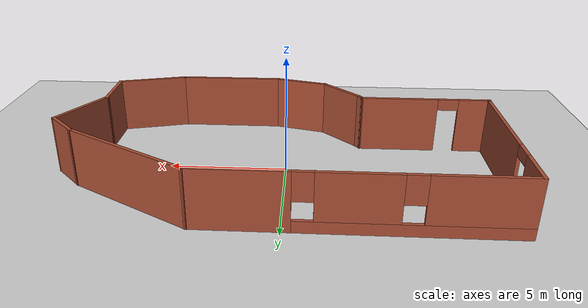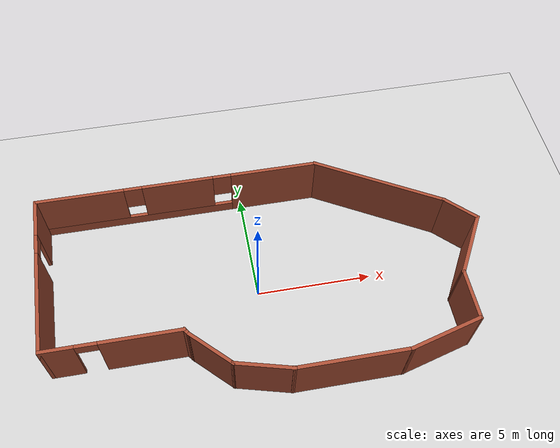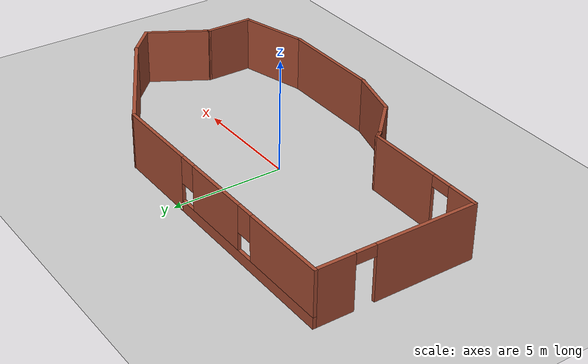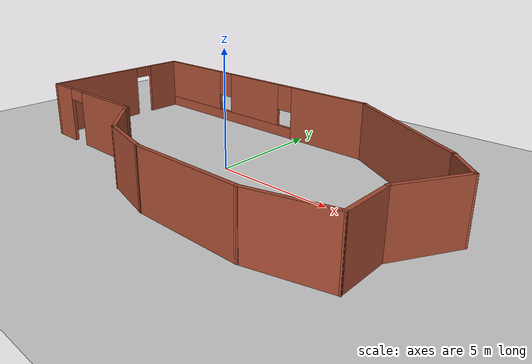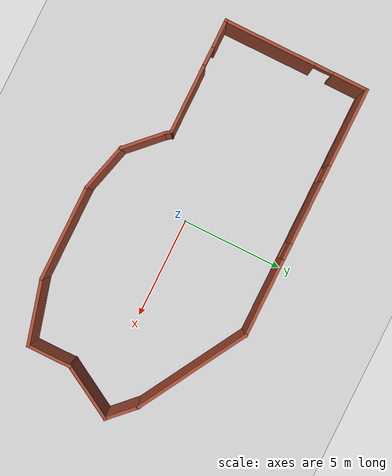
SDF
<sdf version="1.7">
 <world name="default">
  <light name="sun" type="directional">
   <pose>0 0 10 0 -0 0</pose>
   <diffuse>0.8 0.8 0.8 1</diffuse>
   <specular>0.2 0.2 0.2 1</specular>
   <attenuation>
    <range>1000</range>
    <constant>0.9</constant>
    <linear>0.01</linear>
    <quadratic>0.001</quadratic>
   </attenuation>
   <direction>-0.5 0.1 -0.9</direction>
   <spot><inner_angle>0</inner_angle><outer_angle>0</outer_angle><falloff>0</falloff></spot>
  </light>
  <model name="ground_plane">
   <static>1</static>
   <link name="link">
    <collision name="collision">
     <geometry><plane><normal>0 0 1</normal><size>100 100</size></plane></geometry>
     <surface><friction><ode><mu>100</mu><mu2>50</mu2></ode></friction></surface>
    </collision>
    <visual name="visual">
     <cast_shadows>0</cast_shadows>
     <geometry><plane><normal>0 0 1</normal><size>100 100</size></plane></geometry>
     <material>
      <script><uri>file://media/materials/scripts/gazebo.material</uri><name>Gazebo/Grey</name></script>
     </material>
    </visual>
   </link>
  </model>
  <gravity>0 0 -9.8</gravity>
  <magnetic_field>6e-06 2.3e-05 -4.2e-05</magnetic_field>
  <atmosphere type="adiabatic"/>
  <physics type="ode">
   <max_step_size>0.001</max_step_size>
   <real_time_factor>1</real_time_factor>
   <real_time_update_rate>1000</real_time_update_rate>
  </physics>
  <scene><ambient>0.4 0.4 0.4 1</ambient><background>0.7 0.7 0.7 1</background><shadows>1</shadows></scene>
  <audio><device>default</device></audio>
  <spherical_coordinates>
   <surface_model>EARTH_WGS84</surface_model>
   <latitude_deg>0</latitude_deg>
   <longitude_deg>0</longitude_deg>
   <elevation>0</elevation>
   <heading_deg>0</heading_deg>
  </spherical_coordinates>
  <model name="rover_sim_building">
   <pose>0.355943 0.04559 0 0 -0 0</pose>
   <link name="Wall_0">
    <collision name="Wall_0_Collision">
     <geometry><box><size>2.25 0.15 2.5</size></box></geometry>
     <pose>0 0 1.25 0 -0 0</pose>
    </collision>
    <visual name="Wall_0_Visual">
     <pose>0 0 1.25 0 -0 0</pose>
     <geometry><box><size>2.25 0.15 2.5</size></box></geometry>
     <material>
      <script><uri>file://media/materials/scripts/gazebo.material</uri><name>Gazebo/Bricks</name></script>
      <ambient>1 1 1 1</ambient>
     </material>
     <meta><layer>0</layer></meta>
    </visual>
    <pose>-2.77348 -3.36805 0 0 -0 -0.785398</pose>
   </link>
   <link name="Wall_1">
    <collision name="Wall_1_Collision">
     <geometry><box><size>2.5 0.15 2.5</size></box></geometry>
     <pose>0 0 1.25 0 -0 0</pose>
    </collision>
    <visual name="Wall_1_Visual">
     <pose>0 0 1.25 0 -0 0</pose>
     <geometry><box><size>2.5 0.15 2.5</size></box></geometry>
     <material>
      <script><uri>file://media/materials/scripts/gazebo.material</uri><name>Gazebo/Bricks</name></script>
      <ambient>1 1 1 1</ambient>
     </material>
     <meta><layer>0</layer></meta>
    </visual>
    <pose>-0.896056 -4.41463 0 0 -0 -0.261799</pose>
   </link>
   <link name="Wall_10">
    <pose>-6.48934 -2.39186 0 0 -0 0</pose>
    <visual name="Wall_10_Visual_0">
     <pose>-2.16689 0 1.25 0 -0 0</pose>
     <geometry><box><size>1.41623 0.15 2.5</size></box></geometry>
     <material>
      <script><uri>file://media/materials/scripts/gazebo.material</uri><name>Gazebo/Bricks</name></script>
      <ambient>1 1 1 1</ambient>
     </material>
     <meta><layer>0</layer></meta>
    </visual>
    <collision name="Wall_10_Collision_0">
     <geometry><box><size>1.41623 0.15 2.5</size></box></geometry>
     <pose>-2.16689 0 1.25 0 -0 0</pose>
    </collision>
    <visual name="Wall_10_Visual_1">
     <pose>1.15811 0 1.25 0 -0 0</pose>
     <geometry><box><size>3.43377 0.15 2.5</size></box></geometry>
     <material>
      <script><uri>file://media/materials/scripts/gazebo.material</uri><name>Gazebo/Bricks</name></script>
      <ambient>1 1 1 1</ambient>
     </material>
     <meta><layer>0</layer></meta>
    </visual>
    <collision name="Wall_10_Collision_1">
     <geometry><box><size>3.43377 0.15 2.5</size></box></geometry>
     <pose>1.15811 0 1.25 0 -0 0</pose>
    </collision>
    <visual name="Wall_10_Visual_2">
     <pose>-1.00877 0 2.25 0 -0 0</pose>
     <geometry><box><size>0.9 0.15 0.5</size></box></geometry>
     <material>
      <script><uri>file://media/materials/scripts/gazebo.material</uri><name>Gazebo/Bricks</name></script>
      <ambient>1 1 1 1</ambient>
     </material>
     <meta><layer>0</layer></meta>
    </visual>
    <collision name="Wall_10_Collision_2">
     <geometry><box><size>0.9 0.15 0.5</size></box></geometry>
     <pose>-1.00877 0 2.25 0 -0 0</pose>
    </collision>
   </link>
   <link name="Wall_11">
    <collision name="Wall_11_Collision">
     <geometry><box><size>0.44103 0.15 2.5</size></box></geometry>
     <pose>0 0 1.25 0 -0 0</pose>
    </collision>
    <visual name="Wall_11_Visual">
     <pose>0 0 1.25 0 -0 0</pose>
     <geometry><box><size>0.44103 0.15 2.5</size></box></geometry>
     <material>
      <script><uri>file://media/materials/scripts/gazebo.material</uri><name>Gazebo/Bricks</name></script>
      <ambient>1 1 1 1</ambient>
     </material>
     <meta><layer>0</layer></meta>
    </visual>
    <pose>-3.60264 -2.50872 0 0 -0 -0.932519</pose>
   </link>
   <link name="Wall_2">
    <collision name="Wall_2_Collision">
     <geometry><box><size>4.75 0.15 2.5</size></box></geometry>
     <pose>0 0 1.25 0 -0 0</pose>
    </collision>
    <visual name="Wall_2_Visual">
     <pose>0 0 1.25 0 -0 0</pose>
     <geometry><box><size>4.75 0.15 2.5</size></box></geometry>
     <material>
      <script><uri>file://media/materials/scripts/gazebo.material</uri><name>Gazebo/Bricks</name></script>
      <ambient>1 1 1 1</ambient>
     </material>
     <meta><layer>0</layer></meta>
    </visual>
    <pose>2.53891 -4.71874 0 0 -0 0</pose>
   </link>
   <link name="Wall_3">
    <collision name="Wall_3_Collision">
     <geometry><box><size>3.25 0.15 2.5</size></box></geometry>
     <pose>0 0 1.25 0 -0 0</pose>
    </collision>
    <visual name="Wall_3_Visual">
     <pose>0 0 1.25 0 -0 0</pose>
     <geometry><box><size>3.25 0.15 2.5</size></box></geometry>
     <material>
      <script><uri>file://media/materials/scripts/gazebo.material</uri><name>Gazebo/Bricks</name></script>
      <ambient>1 1 1 1</ambient>
     </material>
     <meta><layer>0</layer></meta>
    </visual>
    <pose>6.33609 -4.31757 0 0 -0 0.261799</pose>
   </link>
   <link name="Wall_4">
    <collision name="Wall_4_Collision">
     <geometry><box><size>2.25 0.15 2.5</size></box></geometry>
     <pose>0 0 1.25 0 -0 0</pose>
    </collision>
    <visual name="Wall_4_Visual">
     <pose>0 0 1.25 0 -0 0</pose>
     <geometry><box><size>2.25 0.15 2.5</size></box></geometry>
     <material>
      <script><uri>file://media/materials/scripts/gazebo.material</uri><name>Gazebo/Bricks</name></script>
      <ambient>1 1 1 1</ambient>
     </material>
     <meta><layer>0</layer></meta>
    </visual>
    <pose>7.83328 -2.8664 0 0 -0 1.5708</pose>
   </link>
   <link name="Wall_5">
    <collision name="Wall_5_Collision">
     <geometry><box><size>3 0.15 2.5</size></box></geometry>
     <pose>0 0 1.25 0 -0 0</pose>
    </collision>
    <visual name="Wall_5_Visual">
     <pose>0 0 1.25 0 -0 0</pose>
     <geometry><box><size>3 0.15 2.5</size></box></geometry>
     <material>
      <script><uri>file://media/materials/scripts/gazebo.material</uri><name>Gazebo/Bricks</name></script>
      <ambient>1 1 1 1</ambient>
     </material>
     <meta><layer>0</layer></meta>
    </visual>
    <pose>8.54578 -0.582314 0 0 -0 1.0472</pose>
   </link>
   <link name="Wall_6">
    <collision name="Wall_6_Collision">
     <geometry><box><size>1.75 0.15 2.5</size></box></geometry>
     <pose>0 0 1.25 0 -0 0</pose>
    </collision>
    <visual name="Wall_6_Visual">
     <pose>0 0 1.25 0 -0 0</pose>
     <geometry><box><size>1.75 0.15 2.5</size></box></geometry>
     <material>
      <script><uri>file://media/materials/scripts/gazebo.material</uri><name>Gazebo/Bricks</name></script>
      <ambient>1 1 1 1</ambient>
     </material>
     <meta><layer>0</layer></meta>
    </visual>
    <pose>8.69259 1.21746 0 0 -0 2.35619</pose>
   </link>
   <link name="Wall_7">
    <collision name="Wall_7_Collision">
     <geometry><box><size>6 0.15 2.5</size></box></geometry>
     <pose>0 0 1.25 0 -0 0</pose>
    </collision>
    <visual name="Wall_7_Visual">
     <pose>0 0 1.25 0 -0 0</pose>
     <geometry><box><size>6 0.15 2.5</size></box></geometry>
     <material>
      <script><uri>file://media/materials/scripts/gazebo.material</uri><name>Gazebo/Bricks</name></script>
      <ambient>1 1 1 1</ambient>
     </material>
     <meta><layer>0</layer></meta>
    </visual>
    <pose>5.59378 3.24564 0 0 -0 2.61799</pose>
   </link>
   <link name="Wall_8">
    <pose>-3.11434 4.70814 0 0 -0 3.14159</pose>
    <visual name="Wall_8_Visual_0">
     <pose>-4.30537 0 1.25 0 -0 0</pose>
     <geometry><box><size>3.88927 0.15 2.5</size></box></geometry>
     <material>
      <script><uri>file://media/materials/scripts/gazebo.material</uri><name>Gazebo/Bricks</name></script>
      <ambient>1 1 1 1</ambient>
     </material>
     <meta><layer>0</layer></meta>
    </visual>
    <collision name="Wall_8_Collision_0">
     <geometry><box><size>3.88927 0.15 2.5</size></box></geometry>
     <pose>-4.30537 0 1.25 0 -0 0</pose>
    </collision>
    <visual name="Wall_8_Visual_1">
     <pose>1.94463 0 0.25 0 -0 0</pose>
     <geometry><box><size>8.61073 0.15 0.5</size></box></geometry>
     <material>
      <script><uri>file://media/materials/scripts/gazebo.material</uri><name>Gazebo/Bricks</name></script>
      <ambient>1 1 1 1</ambient>
     </material>
     <meta><layer>0</layer></meta>
    </visual>
    <collision name="Wall_8_Collision_1">
     <geometry><box><size>8.61073 0.15 0.5</size></box></geometry>
     <pose>1.94463 0 0.25 0 -0 0</pose>
    </collision>
    <visual name="Wall_8_Visual_2">
     <pose>0.002361 0 1.5 0 -0 0</pose>
     <geometry><box><size>3.12619 0.15 2</size></box></geometry>
     <material>
      <script><uri>file://media/materials/scripts/gazebo.material</uri><name>Gazebo/Bricks</name></script>
      <ambient>1 1 1 1</ambient>
     </material>
     <meta><layer>0</layer></meta>
    </visual>
    <collision name="Wall_8_Collision_2">
     <geometry><box><size>3.12619 0.15 2</size></box></geometry>
     <pose>0.002361 0 1.5 0 -0 0</pose>
    </collision>
    <visual name="Wall_8_Visual_3">
     <pose>4.30773 0 1.5 0 -0 0</pose>
     <geometry><box><size>3.88454 0.15 2</size></box></geometry>
     <material>
      <script><uri>file://media/materials/scripts/gazebo.material</uri><name>Gazebo/Bricks</name></script>
      <ambient>1 1 1 1</ambient>
     </material>
     <meta><layer>0</layer></meta>
    </visual>
    <collision name="Wall_8_Collision_3">
     <geometry><box><size>3.88454 0.15 2</size></box></geometry>
     <pose>4.30773 0 1.5 0 -0 0</pose>
    </collision>
    <visual name="Wall_8_Visual_4">
     <pose>-1.96073 0 1.9 0 -0 0</pose>
     <geometry><box><size>0.8 0.15 1.2</size></box></geometry>
     <material>
      <script><uri>file://media/materials/scripts/gazebo.material</uri><name>Gazebo/Bricks</name></script>
      <ambient>1 1 1 1</ambient>
     </material>
     <meta><layer>0</layer></meta>
    </visual>
    <collision name="Wall_8_Collision_4">
     <geometry><box><size>0.8 0.15 1.2</size></box></geometry>
     <pose>-1.96073 0 1.9 0 -0 0</pose>
    </collision>
    <visual name="Wall_8_Visual_5">
     <pose>1.96546 0 1.9 0 -0 0</pose>
     <geometry><box><size>0.8 0.15 1.2</size></box></geometry>
     <material>
      <script><uri>file://media/materials/scripts/gazebo.material</uri><name>Gazebo/Bricks</name></script>
      <ambient>1 1 1 1</ambient>
     </material>
     <meta><layer>0</layer></meta>
    </visual>
    <collision name="Wall_8_Collision_5">
     <geometry><box><size>0.8 0.15 1.2</size></box></geometry>
     <pose>1.96546 0 1.9 0 -0 0</pose>
    </collision>
   </link>
   <link name="Wall_9">
    <pose>-9.28934 1.15814 0 0 -0 -1.5708</pose>
    <visual name="Wall_9_Visual_0">
     <pose>-2.73777 0 1.25 0 -0 0</pose>
     <geometry><box><size>1.77446 0.15 2.5</size></box></geometry>
     <material>
      <script><uri>file://media/materials/scripts/gazebo.material</uri><name>Gazebo/Bricks</name></script>
      <ambient>1 1 1 1</ambient>
     </material>
     <meta><layer>0</layer></meta>
    </visual>
    <collision name="Wall_9_Collision_0">
     <geometry><box><size>1.77446 0.15 2.5</size></box></geometry>
     <pose>-2.73777 0 1.25 0 -0 0</pose>
    </collision>
    <visual name="Wall_9_Visual_1">
     <pose>1.33723 0 1.25 0 -0 0</pose>
     <geometry><box><size>4.57554 0.15 2.5</size></box></geometry>
     <material>
      <script><uri>file://media/materials/scripts/gazebo.material</uri><name>Gazebo/Bricks</name></script>
      <ambient>1 1 1 1</ambient>
     </material>
     <meta><layer>0</layer></meta>
    </visual>
    <collision name="Wall_9_Collision_1">
     <geometry><box><size>4.57554 0.15 2.5</size></box></geometry>
     <pose>1.33723 0 1.25 0 -0 0</pose>
    </collision>
    <visual name="Wall_9_Visual_2">
     <pose>-1.40054 0 2.25 0 -0 0</pose>
     <geometry><box><size>0.9 0.15 0.5</size></box></geometry>
     <material>
      <script><uri>file://media/materials/scripts/gazebo.material</uri><name>Gazebo/Bricks</name></script>
      <ambient>1 1 1 1</ambient>
     </material>
     <meta><layer>0</layer></meta>
    </visual>
    <collision name="Wall_9_Collision_2">
     <geometry><box><size>0.9 0.15 0.5</size></box></geometry>
     <pose>-1.40054 0 2.25 0 -0 0</pose>
    </collision>
   </link>
   <static>1</static>
  </model>
 </world>
</sdf>
